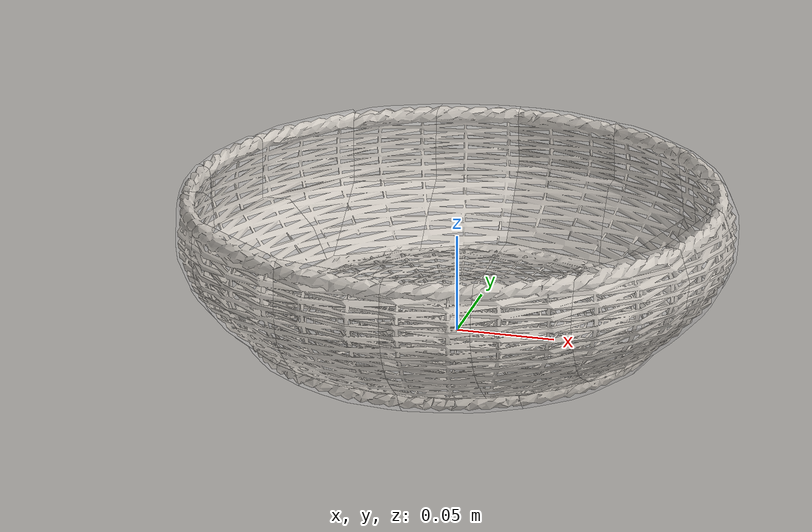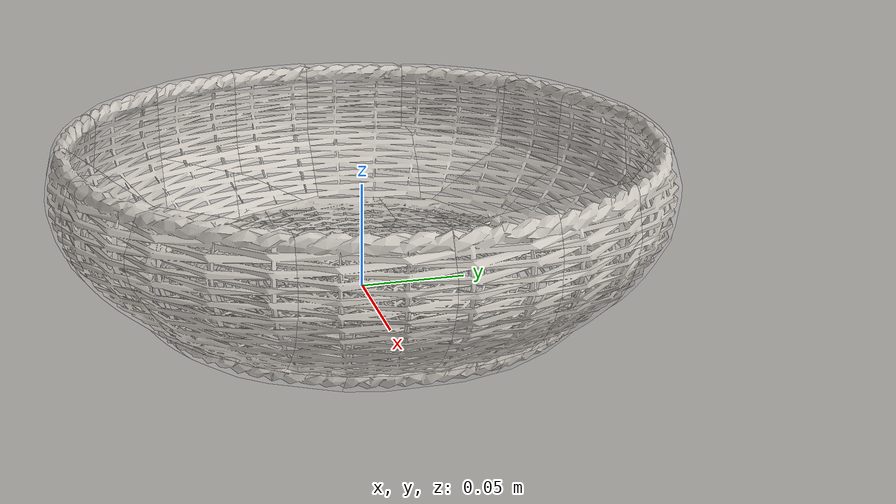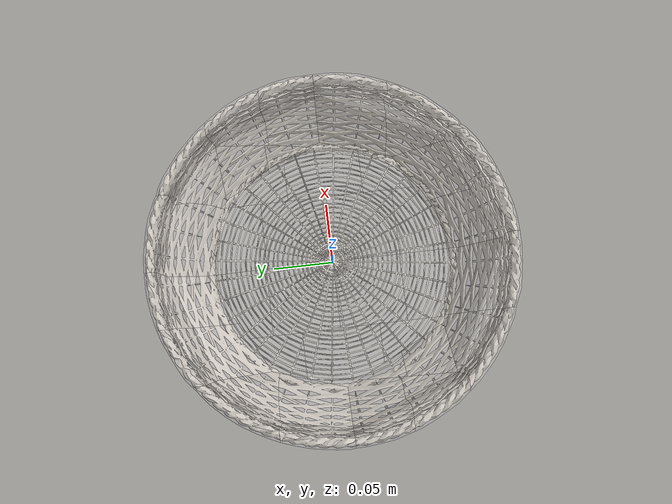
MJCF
<mujoco model="model">
  <compiler angle="radian" />
  <asset>
    <mesh file="visual/Basket045.obj" name="Basket045_vis" scale="0.7 0.7 0.7" />
    <texture file="visual/T_Basket045_BC001.png" name="Basket045_material" type="2d" />
    <material name="Basket045_material" rgba="1 1 1 1.0" texture="Basket045_material" shininess="0.4472135901451111" specular="0.3103448502657381" />
    <mesh file="collision/Basket045_collision_2_0.obj" name="Basket045_collision_2_0" scale="0.7 0.7 0.7" />
    <mesh file="collision/Basket045_collision_3_0.obj" name="Basket045_collision_3_0" scale="0.7 0.7 0.7" />
    <mesh file="collision/Basket045_collision_1_0.obj" name="Basket045_collision_1_0" scale="0.7 0.7 0.7" />
    <mesh file="collision/Basket045_collision_0_0.obj" name="Basket045_collision_0_0" scale="0.7 0.7 0.7" />
    <mesh file="collision/Basket045_collision_0_1.obj" name="Basket045_collision_0_1" scale="0.7 0.7 0.7" />
    <mesh file="collision/Basket045_collision_0_2.obj" name="Basket045_collision_0_2" scale="0.7 0.7 0.7" />
    <mesh file="collision/Basket045_collision_0_3.obj" name="Basket045_collision_0_3" scale="0.7 0.7 0.7" />
    <mesh file="collision/Basket045_collision_0_4.obj" name="Basket045_collision_0_4" scale="0.7 0.7 0.7" />
    <mesh file="collision/Basket045_collision_0_5.obj" name="Basket045_collision_0_5" scale="0.7 0.7 0.7" />
    <mesh file="collision/Basket045_collision_0_6.obj" name="Basket045_collision_0_6" scale="0.7 0.7 0.7" />
    <mesh file="collision/Basket045_collision_0_7.obj" name="Basket045_collision_0_7" scale="0.7 0.7 0.7" />
    <mesh file="collision/Basket045_collision_0_8.obj" name="Basket045_collision_0_8" scale="0.7 0.7 0.7" />
    <mesh file="collision/Basket045_collision_0_9.obj" name="Basket045_collision_0_9" scale="0.7 0.7 0.7" />
    <mesh file="collision/Basket045_collision_0_10.obj" name="Basket045_collision_0_10" scale="0.7 0.7 0.7" />
    <mesh file="collision/Basket045_collision_0_11.obj" name="Basket045_collision_0_11" scale="0.7 0.7 0.7" />
    <mesh file="collision/Basket045_collision_0_12.obj" name="Basket045_collision_0_12" scale="0.7 0.7 0.7" />
    <mesh file="collision/Basket045_collision_0_13.obj" name="Basket045_collision_0_13" scale="0.7 0.7 0.7" />
    <mesh file="collision/Basket045_collision_4_0.obj" name="Basket045_collision_4_0" scale="0.7 0.7 0.7" />
    <mesh file="collision/Basket045_collision_4_1.obj" name="Basket045_collision_4_1" scale="0.7 0.7 0.7" />
    <mesh file="collision/Basket045_collision_5_0.obj" name="Basket045_collision_5_0" scale="0.7 0.7 0.7" />
    <mesh file="collision/Basket045_collision_5_1.obj" name="Basket045_collision_5_1" scale="0.7 0.7 0.7" />
    <mesh file="collision/Basket045_collision_7_0.obj" name="Basket045_collision_7_0" scale="0.7 0.7 0.7" />
    <mesh file="collision/Basket045_collision_7_1.obj" name="Basket045_collision_7_1" scale="0.7 0.7 0.7" />
    <mesh file="collision/Basket045_collision_6_0.obj" name="Basket045_collision_6_0" scale="0.7 0.7 0.7" />
    <mesh file="collision/Basket045_collision_6_1.obj" name="Basket045_collision_6_1" scale="0.7 0.7 0.7" />
    <mesh file="collision/Basket045_collision_6_2.obj" name="Basket045_collision_6_2" scale="0.7 0.7 0.7" />
    <mesh file="collision/Basket045_collision_6_3.obj" name="Basket045_collision_6_3" scale="0.7 0.7 0.7" />
    <mesh file="collision/Basket045_collision_19_0.obj" name="Basket045_collision_19_0" scale="0.7 0.7 0.7" />
    <mesh file="collision/Basket045_collision_18_0.obj" name="Basket045_collision_18_0" scale="0.7 0.7 0.7" />
    <mesh file="collision/Basket045_collision_20_0.obj" name="Basket045_collision_20_0" scale="0.7 0.7 0.7" />
    <mesh file="collision/Basket045_collision_10_0.obj" name="Basket045_collision_10_0" scale="0.7 0.7 0.7" />
    <mesh file="collision/Basket045_collision_10_1.obj" name="Basket045_collision_10_1" scale="0.7 0.7 0.7" />
    <mesh file="collision/Basket045_collision_11_0.obj" name="Basket045_collision_11_0" scale="0.7 0.7 0.7" />
    <mesh file="collision/Basket045_collision_11_1.obj" name="Basket045_collision_11_1" scale="0.7 0.7 0.7" />
    <mesh file="collision/Basket045_collision_13_0.obj" name="Basket045_collision_13_0" scale="0.7 0.7 0.7" />
    <mesh file="collision/Basket045_collision_13_1.obj" name="Basket045_collision_13_1" scale="0.7 0.7 0.7" />
    <mesh file="collision/Basket045_collision_12_0.obj" name="Basket045_collision_12_0" scale="0.7 0.7 0.7" />
    <mesh file="collision/Basket045_collision_12_1.obj" name="Basket045_collision_12_1" scale="0.7 0.7 0.7" />
    <mesh file="collision/Basket045_collision_16_0.obj" name="Basket045_collision_16_0" scale="0.7 0.7 0.7" />
    <mesh file="collision/Basket045_collision_17_0.obj" name="Basket045_collision_17_0" scale="0.7 0.7 0.7" />
    <mesh file="collision/Basket045_collision_15_0.obj" name="Basket045_collision_15_0" scale="0.7 0.7 0.7" />
    <mesh file="collision/Basket045_collision_15_1.obj" name="Basket045_collision_15_1" scale="0.7 0.7 0.7" />
    <mesh file="collision/Basket045_collision_14_0.obj" name="Basket045_collision_14_0" scale="0.7 0.7 0.7" />
    <mesh file="collision/Basket045_collision_14_1.obj" name="Basket045_collision_14_1" scale="0.7 0.7 0.7" />
    <mesh file="collision/Basket045_collision_14_2.obj" name="Basket045_collision_14_2" scale="0.7 0.7 0.7" />
    <mesh file="collision/Basket045_collision_14_3.obj" name="Basket045_collision_14_3" scale="0.7 0.7 0.7" />
    <mesh file="collision/Basket045_collision_8_0.obj" name="Basket045_collision_8_0" scale="0.7 0.7 0.7" />
    <mesh file="collision/Basket045_collision_8_1.obj" name="Basket045_collision_8_1" scale="0.7 0.7 0.7" />
    <mesh file="collision/Basket045_collision_9_0.obj" name="Basket045_collision_9_0" scale="0.7 0.7 0.7" />
    <mesh file="collision/Basket045_collision_9_1.obj" name="Basket045_collision_9_1" scale="0.7 0.7 0.7" />
  </asset>
  <default>
    <default class="visual">
      <geom conaffinity="0" contype="0" group="1" type="mesh" density="100" />
    </default>
    <default class="collision">
      <geom group="0" rgba="1 1 1 0.25" density="100" solimp="0.95 0.98 0.001" solref="0.004 1" />
    </default>
    <default class="region">
      <geom group="1" conaffinity="0" contype="0" rgba="0 1 0 0" />
    </default>
  </default>
  <worldbody>
    <body>
      <body name="object">
        <geom mesh="Basket045_vis" type="mesh" class="visual" material="Basket045_material" />
        <geom class="collision" type="mesh" mesh="Basket045_collision_2_0" />
        <geom class="collision" type="mesh" mesh="Basket045_collision_3_0" />
        <geom class="collision" type="mesh" mesh="Basket045_collision_1_0" />
        <geom class="collision" type="mesh" mesh="Basket045_collision_0_0" />
        <geom class="collision" type="mesh" mesh="Basket045_collision_0_1" />
        <geom class="collision" type="mesh" mesh="Basket045_collision_0_2" />
        <geom class="collision" type="mesh" mesh="Basket045_collision_0_3" />
        <geom class="collision" type="mesh" mesh="Basket045_collision_0_4" />
        <geom class="collision" type="mesh" mesh="Basket045_collision_0_5" />
        <geom class="collision" type="mesh" mesh="Basket045_collision_0_6" />
        <geom class="collision" type="mesh" mesh="Basket045_collision_0_7" />
        <geom class="collision" type="mesh" mesh="Basket045_collision_0_8" />
        <geom class="collision" type="mesh" mesh="Basket045_collision_0_9" />
        <geom class="collision" type="mesh" mesh="Basket045_collision_0_10" />
        <geom class="collision" type="mesh" mesh="Basket045_collision_0_11" />
        <geom class="collision" type="mesh" mesh="Basket045_collision_0_12" />
        <geom class="collision" type="mesh" mesh="Basket045_collision_0_13" />
        <geom class="collision" type="mesh" mesh="Basket045_collision_4_0" />
        <geom class="collision" type="mesh" mesh="Basket045_collision_4_1" />
        <geom class="collision" type="mesh" mesh="Basket045_collision_5_0" />
        <geom class="collision" type="mesh" mesh="Basket045_collision_5_1" />
        <geom class="collision" type="mesh" mesh="Basket045_collision_7_0" />
        <geom class="collision" type="mesh" mesh="Basket045_collision_7_1" />
        <geom class="collision" type="mesh" mesh="Basket045_collision_6_0" />
        <geom class="collision" type="mesh" mesh="Basket045_collision_6_1" />
        <geom class="collision" type="mesh" mesh="Basket045_collision_6_2" />
        <geom class="collision" type="mesh" mesh="Basket045_collision_6_3" />
        <geom class="collision" type="mesh" mesh="Basket045_collision_19_0" />
        <geom class="collision" type="mesh" mesh="Basket045_collision_18_0" />
        <geom class="collision" type="mesh" mesh="Basket045_collision_20_0" />
        <geom class="collision" type="mesh" mesh="Basket045_collision_10_0" />
        <geom class="collision" type="mesh" mesh="Basket045_collision_10_1" />
        <geom class="collision" type="mesh" mesh="Basket045_collision_11_0" />
        <geom class="collision" type="mesh" mesh="Basket045_collision_11_1" />
        <geom class="collision" type="mesh" mesh="Basket045_collision_13_0" />
        <geom class="collision" type="mesh" mesh="Basket045_collision_13_1" />
        <geom class="collision" type="mesh" mesh="Basket045_collision_12_0" />
        <geom class="collision" type="mesh" mesh="Basket045_collision_12_1" />
        <geom class="collision" type="mesh" mesh="Basket045_collision_16_0" />
        <geom class="collision" type="mesh" mesh="Basket045_collision_17_0" />
        <geom class="collision" type="mesh" mesh="Basket045_collision_15_0" />
        <geom class="collision" type="mesh" mesh="Basket045_collision_15_1" />
        <geom class="collision" type="mesh" mesh="Basket045_collision_14_0" />
        <geom class="collision" type="mesh" mesh="Basket045_collision_14_1" />
        <geom class="collision" type="mesh" mesh="Basket045_collision_14_2" />
        <geom class="collision" type="mesh" mesh="Basket045_collision_14_3" />
        <geom class="collision" type="mesh" mesh="Basket045_collision_8_0" />
        <geom class="collision" type="mesh" mesh="Basket045_collision_8_1" />
        <geom class="collision" type="mesh" mesh="Basket045_collision_9_0" />
        <geom class="collision" type="mesh" mesh="Basket045_collision_9_1" />
        <geom class="region" name="reg_bbox" type="box" pos="-0.00000 0.00000 0.03788" size="0.13977 0.13977 0.03905" />
      </body>
    </body>
  </worldbody>
</mujoco>
